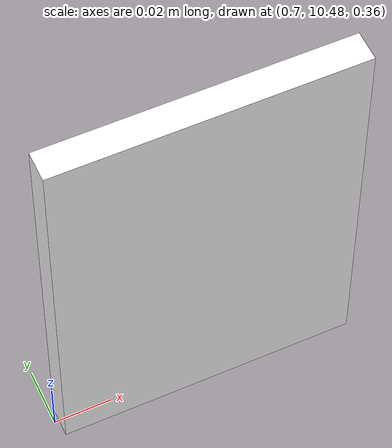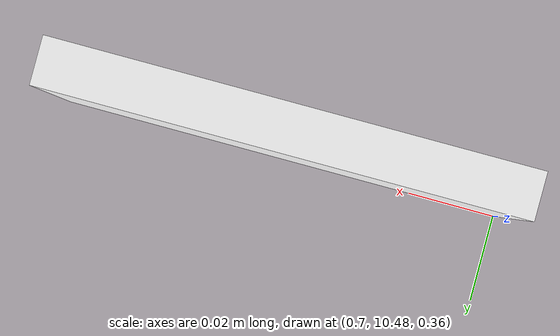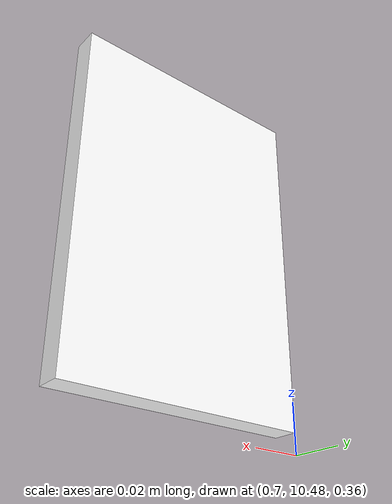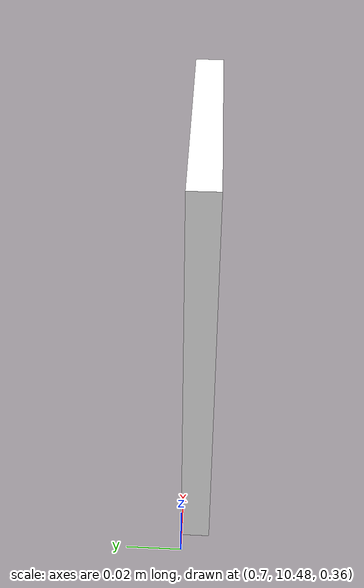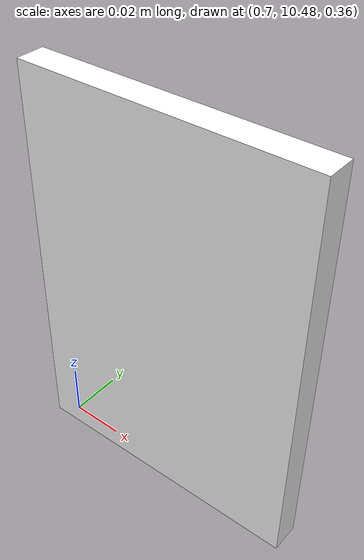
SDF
<?xml version='1.0'?>
<sdf version='1.6'>
  <model name='Y'>
    <link name='box'>
      <pose frame=''>0 0 0 0 -0 0</pose>
      <self_collide>0</self_collide>
      <enable_wind>0</enable_wind>
      <kinematic>0</kinematic>
      <gravity>1</gravity>
      <inertial>
        <mass>1000</mass>
        <pose frame=''>0 0 0 0 -0 0</pose>
        <inertia>
          <ixx>1</ixx>
          <ixy>0</ixy>
          <ixz>0</ixz>
          <iyy>1</iyy>
          <iyz>0</iyz>
          <izz>1</izz>
        </inertia>
      </inertial>
      <collision name='collision'>
        <geometry>
          <box>
            <size>0.1 0.01 0.14</size>
          </box>
        </geometry>
      </collision>
      <visual name='visual'>
        <geometry>
          <box>
            <size>0.1 0.01 0.14</size>
          </box>
        </geometry>
        <material>
          <script>
            <uri>model://Y/materials/scripts</uri>
            <uri>model://Y/materials/textures</uri>
            <name>Y</name>
          </script>
          <shader type='pixel'>
            <normal_map>__default__</normal_map>
          </shader>
          <ambient>1 1 1 1</ambient>
          <diffuse>1 1 1 1</diffuse>
          <specular>0 0 0 1</specular>
          <emissive>0 0 0 1</emissive>
          <lighting>0</lighting>
        </material>
        <pose frame=''>0 0 0 0 -0 0</pose>
        <transparency>0</transparency>
        <cast_shadows>1</cast_shadows>
      </visual>
    </link>
    <static>0</static>
    <pose frame=''>0.75 10.475 0.4384 0 -0 0</pose>
  </model>
</sdf>
